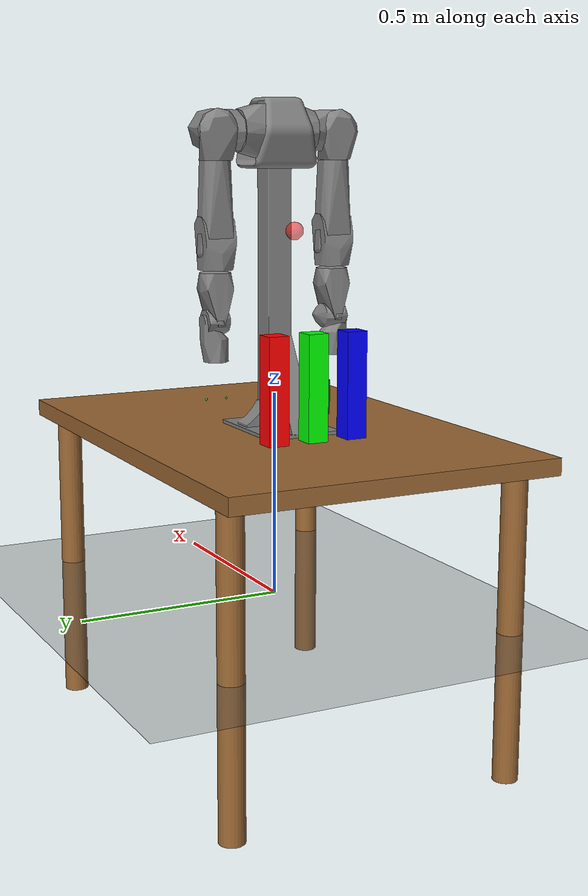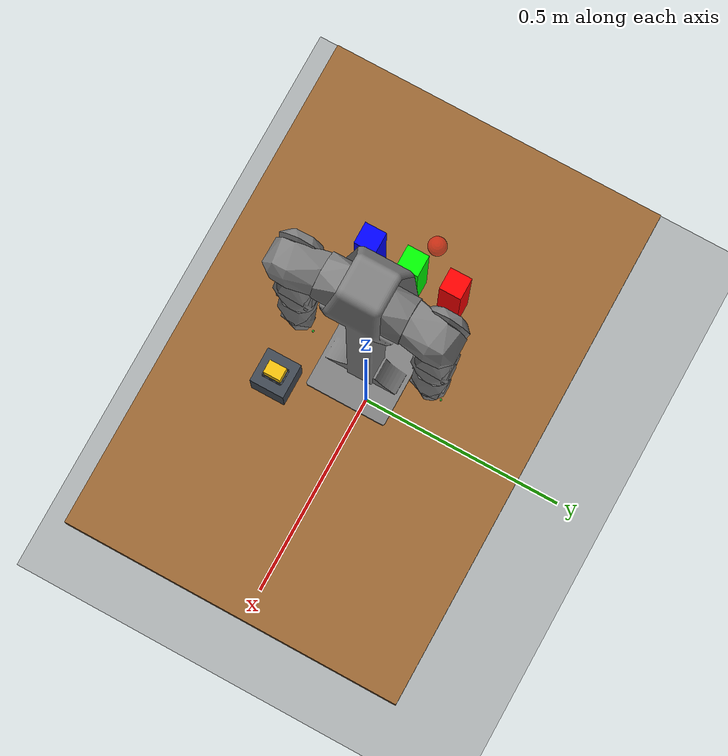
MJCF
<?xml version='1.0' encoding='utf-8'?>
<mujoco model="openarm_pick_demo_v8">
  <compiler angle="radian" />
  <option gravity="0 0 -9.81" />
  <asset>
    <mesh name="body_link0_symp" content_type="model/stl" file="/home/hkz/openarm_rosclaw/ros_ws/src/openarm_description/assets/robot/openarm_v1.0/mesh/body/collision/body_link0_symp.stl" scale="0.001 0.001 0.001" />
    <mesh name="link0_symp" content_type="model/stl" file="/home/hkz/openarm_rosclaw/ros_ws/src/openarm_description/assets/robot/openarm_v1.0/mesh/arm/collision/link0_symp.stl" scale="0.001 -0.001 0.001" />
    <mesh name="link1_symp" content_type="model/stl" file="/home/hkz/openarm_rosclaw/ros_ws/src/openarm_description/assets/robot/openarm_v1.0/mesh/arm/collision/link1_symp.stl" scale="0.001 -0.001 0.001" />
    <mesh name="link2_symp" content_type="model/stl" file="/home/hkz/openarm_rosclaw/ros_ws/src/openarm_description/assets/robot/openarm_v1.0/mesh/arm/collision/link2_symp.stl" scale="0.001 -0.001 0.001" />
    <mesh name="link3_symp" content_type="model/stl" file="/home/hkz/openarm_rosclaw/ros_ws/src/openarm_description/assets/robot/openarm_v1.0/mesh/arm/collision/link3_symp.stl" scale="0.001 0.001 0.001" />
    <mesh name="link4_symp" content_type="model/stl" file="/home/hkz/openarm_rosclaw/ros_ws/src/openarm_description/assets/robot/openarm_v1.0/mesh/arm/collision/link4_symp.stl" scale="0.001 0.001 0.001" />
    <mesh name="link5_symp" content_type="model/stl" file="/home/hkz/openarm_rosclaw/ros_ws/src/openarm_description/assets/robot/openarm_v1.0/mesh/arm/collision/link5_symp.stl" scale="0.001 -0.001 0.001" />
    <mesh name="link6_symp" content_type="model/stl" file="/home/hkz/openarm_rosclaw/ros_ws/src/openarm_description/assets/robot/openarm_v1.0/mesh/arm/collision/link6_symp.stl" scale="0.001 -0.001 0.001" />
    <mesh name="link7_symp" content_type="model/stl" file="/home/hkz/openarm_rosclaw/ros_ws/src/openarm_description/assets/robot/openarm_v1.0/mesh/arm/collision/link7_symp.stl" scale="0.001 -0.001 0.001" />
    <mesh name="link0_symp1" content_type="model/stl" file="/home/hkz/openarm_rosclaw/ros_ws/src/openarm_description/assets/robot/openarm_v1.0/mesh/arm/collision/link0_symp.stl" scale="0.001 0.001 0.001" />
    <mesh name="link1_symp1" content_type="model/stl" file="/home/hkz/openarm_rosclaw/ros_ws/src/openarm_description/assets/robot/openarm_v1.0/mesh/arm/collision/link1_symp.stl" scale="0.001 0.001 0.001" />
    <mesh name="link2_symp1" content_type="model/stl" file="/home/hkz/openarm_rosclaw/ros_ws/src/openarm_description/assets/robot/openarm_v1.0/mesh/arm/collision/link2_symp.stl" scale="0.001 0.001 0.001" />
    <mesh name="link5_symp1" content_type="model/stl" file="/home/hkz/openarm_rosclaw/ros_ws/src/openarm_description/assets/robot/openarm_v1.0/mesh/arm/collision/link5_symp.stl" scale="0.001 0.001 0.001" />
    <mesh name="link6_symp1" content_type="model/stl" file="/home/hkz/openarm_rosclaw/ros_ws/src/openarm_description/assets/robot/openarm_v1.0/mesh/arm/collision/link6_symp.stl" scale="0.001 0.001 0.001" />
    <mesh name="link7_symp1" content_type="model/stl" file="/home/hkz/openarm_rosclaw/ros_ws/src/openarm_description/assets/robot/openarm_v1.0/mesh/arm/collision/link7_symp.stl" scale="0.001 0.001 0.001" />
    <mesh name="finger" content_type="model/stl" file="/home/hkz/openarm_rosclaw/ros_ws/src/openarm_description/assets/end_effector/parallel_link/meshes/collision/finger.stl" scale="0.001 0.001 0.001" />
    <mesh name="finger1" content_type="model/stl" file="/home/hkz/openarm_rosclaw/ros_ws/src/openarm_description/assets/end_effector/parallel_link/meshes/collision/finger.stl" scale="0.001 -0.001 0.001" />
  </asset>
  <worldbody>
    <light name="sun" pos="0 0 3" dir="0 0 -1" directional="true" />
    <geom name="floor" type="plane" size="2 2 0.05" rgba="0.3 0.3 0.3 1" />
    <body name="table" pos="0 0 0.4">
      <geom name="table_top" type="box" size="0.6 0.4 0.02" rgba="0.6 0.4 0.2 1" />
      <geom name="table_leg1" type="cylinder" size="0.03 0.38" pos="0.5 0.35 -0.38" rgba="0.6 0.4 0.2 1" />
      <geom name="table_leg2" type="cylinder" size="0.03 0.38" pos="-0.5 0.35 -0.38" rgba="0.6 0.4 0.2 1" />
      <geom name="table_leg3" type="cylinder" size="0.03 0.38" pos="0.5 -0.35 -0.38" rgba="0.6 0.4 0.2 1" />
      <geom name="table_leg4" type="cylinder" size="0.03 0.38" pos="-0.5 -0.35 -0.38" rgba="0.6 0.4 0.2 1" />
    </body>
    <body name="red_block" pos="-0.2 0.1 0.545">
      <geom name="red_block_geom" type="box" size="0.025 0.025 0.125" rgba="1 0 0 1" friction="1 0.5 0.1" condim="4" />
    </body>
    <body name="blue_block" pos="-0.2 -0.1 0.545">
      <geom name="blue_block_geom" type="box" size="0.025 0.025 0.125" rgba="0 0 1 1" friction="1 0.5 0.1" condim="4" />
    </body>
    <body name="green_block" pos="-0.2 0.0 0.545">
      <geom name="green_block_geom" type="box" size="0.025 0.025 0.125" rgba="0 1 0 1" friction="1 0.5 0.1" condim="4" />
    </body>
    <site name="target_marker" pos="-0.2 0.05 0.9" size="0.02" rgba="1 0 0 0.5" type="sphere" />
    <body name="pick_demo_support" pos="0.116970 -0.153500 0.463415">
      <geom name="pick_demo_support_geom" type="box" size="0.040000 0.040000 0.043415" rgba="0.25 0.28 0.32 1" friction="2.0 0.5 0.1" condim="4" />
      <geom name="pick_demo_cradle_x_negative" type="box" pos="-0.018000 0.000000 0.044415" size="0.001000 0.022000 0.001000" rgba="0.35 0.38 0.42 1" friction="2.0 0.5 0.1" condim="4" />
      <geom name="pick_demo_cradle_x_positive" type="box" pos="0.018000 0.000000 0.044415" size="0.001000 0.022000 0.001000" rgba="0.35 0.38 0.42 1" friction="2.0 0.5 0.1" condim="4" />
      <geom name="pick_demo_cradle_y_negative" type="box" pos="0.000000 -0.023000 0.044415" size="0.017000 0.001000 0.001000" rgba="0.35 0.38 0.42 1" friction="2.0 0.5 0.1" condim="4" />
      <geom name="pick_demo_cradle_y_positive" type="box" pos="0.000000 0.023000 0.044415" size="0.017000 0.001000 0.001000" rgba="0.35 0.38 0.42 1" friction="2.0 0.5 0.1" condim="4" />
    </body>
    <body name="pick_demo_block" pos="0.11697 -0.15350 0.52183">
      <joint name="pick_demo_block_freejoint" type="free" damping="0.2" />
      <geom name="pick_demo_block_geom" type="box" size="0.01500 0.02000 0.01500" mass="0.025" rgba="0.95 0.75 0.05 1" friction="2.0 0.5 0.1" condim="4" />
    </body>
    <body name="openarm_base_wrapper" pos="0 0 0.42">
      <geom name="openarm_body_link0_collision" type="mesh" mesh="body_link0_symp" />
      <geom name="openarm_left_link0_collision" pos="0 0.031 0.698" quat="0.707105 -0.707108 0 0" type="mesh" mesh="link0_symp" />
      <geom name="openarm_right_link0_collision" pos="0 -0.031 0.698" quat="0.707105 0.707108 0 0" type="mesh" mesh="link0_symp1" />
      <body name="openarm_left_link1" pos="0 0.0935 0.698" quat="0.707105 -0.707108 0 0">
        <inertial pos="0.00114677 -3.31999e-05 0.0539528" quat="0.999653 -0.00178277 0.0262159 0.0018256" mass="1.14167" diaginertia="0.00156853 0.001273 0.00101447" />
        <joint name="openarm_left_joint1" pos="0 0 0" axis="0 0 1" range="-3.49066 1.39626" actuatorfrcrange="-40 40" />
        <geom name="openarm_left_link1_collision" pos="0 0 -0.0625" type="mesh" mesh="link1_symp" />
        <body name="openarm_left_link2" pos="-0.0301 0 0.06" quat="0.707107 -0.707107 0 0">
          <inertial pos="0.00839629 2.01451e-08 0.0325665" quat="0.966167 -0.00423301 0.257864 -0.00305037" mass="0.277509" diaginertia="0.000421651 0.000376006 0.000169343" />
          <joint name="openarm_left_joint2" pos="0 0 0" axis="-1 0 0" range="-3.31613 0.174533" actuatorfrcrange="-40 40" />
          <geom name="openarm_left_link2_collision" pos="0.0301 0 -0.1225" type="mesh" mesh="link2_symp" />
          <body name="openarm_left_link3" pos="0.0301 0 0.06625">
            <inertial pos="-0.00210475 0.000554909 0.0904747" quat="0.999951 -0.00493243 -0.00144148 0.00846755" mass="1.07386" diaginertia="0.00437205 0.00431934 0.000660613" />
            <joint name="openarm_left_joint3" pos="0 0 0" axis="0 0 1" range="-1.5708 1.5708" actuatorfrcrange="-27 27" />
            <geom name="openarm_left_link3_collision" pos="0 0 -0.18875" quat="1 0 0 0" type="mesh" mesh="link3_symp" />
            <body name="openarm_left_link4" pos="0 0.0315 0.15375">
              <inertial pos="-0.00290068 -0.0303058 0.0633964" quat="0.994282 0.0996876 0.0329726 -0.0194356" mass="0.634853" diaginertia="0.000624355 0.000518596 0.000325049" />
              <joint name="openarm_left_joint4" pos="0 0 0" axis="0 1 0" range="0 2.44346" actuatorfrcrange="-27 27" />
              <geom name="openarm_left_link4_collision" pos="0 -0.0315 -0.3425" type="mesh" mesh="link4_symp" />
              <body name="openarm_left_link5" pos="0 -0.0315 0.0955">
                <inertial pos="-0.00304967 -0.00088669 0.0430798" quat="0.811398 0.0020034 -0.0362076 0.583368" mass="0.615659" diaginertia="0.000448064 0.000420549 0.000323387" />
                <joint name="openarm_left_joint5" pos="0 0 0" axis="0 0 1" range="-1.5708 1.5708" actuatorfrcrange="-7 7" />
                <geom name="openarm_left_link5_collision" pos="0 0 -0.438" quat="1 0 0 0" type="mesh" mesh="link5_symp" />
                <body name="openarm_left_link6" pos="0.0375 0 0.1205">
                  <inertial pos="-0.0371366 -0.000332305 -9.49837e-05" quat="-0.162305 0.716462 -0.124543 0.666955" mass="0.475203" diaginertia="0.000159518 0.000156606 0.000142875" />
                  <joint name="openarm_left_joint6" pos="0 0 0" axis="1 0 0" range="-0.785398 0.785398" actuatorfrcrange="-7 7" />
                  <geom name="openarm_left_link6_collision" pos="-0.0375 0 -0.5585" quat="1 0 0 0" type="mesh" mesh="link6_symp" />
                  <body name="openarm_left_link7" pos="-0.0375 0 0">
                    <inertial pos="6.87551e-05 -0.0126618 0.0695195" quat="0.977257 -0.211956 -0.00210064 -0.00621976" mass="0.465977" diaginertia="0.000639018 0.000537496 0.000301486" />
                    <joint name="openarm_left_joint7" pos="0 0 0" axis="0 -1 0" range="-1.5708 1.5708" actuatorfrcrange="-7 7" />
                    <geom name="openarm_left_link7_collision" pos="0 0 -0.5585" type="mesh" mesh="link7_symp" />
                    <body name="openarm_left_right_finger" pos="0 -0.0334627307177 0.1025">
                      <inertial pos="0.0064528 -0.01702 0.0219685" quat="0.904408 0.0781531 -0.188678 0.374618" mass="0.0360255" diaginertia="1.83333e-06 1.83333e-06 1.83333e-06" />
                      <joint name="openarm_left_finger_joint1" pos="0 0 0" axis="-0 1 -0" type="slide" range="0 0.044" actuatorfrcrange="-333 333" />
                      <geom name="openarm_left_right_finger_collision" pos="0 0.05 -0.673001" quat="1 0 0 0" type="mesh" mesh="finger1" />
                      <site name="openarm_left_finger1_contact_site" pos="-0.000897880448631 0.00776118841359 0.0802128056381" size="0.0025" type="sphere" rgba="0.1 0.9 0.2 0.8" />
                    </body>
                    <body name="openarm_left_left_finger" pos="0 0.0334627307177 0.1025">
                      <inertial pos="0.0064528 0.01702 0.0219685" quat="0.904408 0.0781531 -0.188678 0.374618" mass="0.0360255" diaginertia="1.83333e-06 1.83333e-06 1.83333e-06" />
                      <joint name="openarm_left_finger_joint2" pos="0 0 0" axis="-0 -1 -0" type="slide" range="0 0.044" actuatorfrcrange="-333 333" />
                      <geom name="openarm_left_left_finger_collision" pos="0 -0.05 -0.673001" quat="1 0 0 0" type="mesh" mesh="finger" />
                      <site name="openarm_left_finger2_contact_site" pos="-0.000897880448631 -0.00776118841359 0.0802128056381" size="0.0025" type="sphere" rgba="0.1 0.9 0.2 0.8" />
                    </body>
                  </body>
                </body>
              </body>
            </body>
          </body>
        </body>
      </body>
      <body name="openarm_right_link1" pos="0 -0.0935 0.698" quat="0.707105 0.707108 0 0">
        <inertial pos="0.00114677 3.31999e-05 0.0539528" quat="0.999653 0.00178277 0.0262159 -0.0018256" mass="1.14167" diaginertia="0.00156853 0.001273 0.00101447" />
        <joint name="openarm_right_joint1" pos="0 0 0" axis="0 0 1" range="-1.39626 3.49066" actuatorfrcrange="-40 40" />
        <geom name="openarm_right_link1_collision" pos="0 0 -0.0625" type="mesh" mesh="link1_symp1" />
        <body name="openarm_right_link2" pos="-0.0301 0 0.06" quat="0.707107 0.707107 0 0">
          <inertial pos="0.00839629 -2.01451e-08 0.0325665" quat="0.966167 0.00423301 0.257864 0.00305037" mass="0.277509" diaginertia="0.000421651 0.000376006 0.000169343" />
          <joint name="openarm_right_joint2" pos="0 0 0" axis="-1 0 0" range="-0.174533 3.31613" actuatorfrcrange="-40 40" />
          <geom name="openarm_right_link2_collision" pos="0.0301 0 -0.1225" quat="1 0 0 0" type="mesh" mesh="link2_symp1" />
          <body name="openarm_right_link3" pos="0.0301 0 0.06625">
            <inertial pos="-0.00210475 0.000554909 0.0904747" quat="0.999951 -0.00493243 -0.00144148 0.00846755" mass="1.07386" diaginertia="0.00437205 0.00431934 0.000660613" />
            <joint name="openarm_right_joint3" pos="0 0 0" axis="0 0 1" range="-1.5708 1.5708" actuatorfrcrange="-27 27" />
            <geom name="openarm_right_link3_collision" pos="0 0 -0.18875" quat="1 0 0 0" type="mesh" mesh="link3_symp" />
            <body name="openarm_right_link4" pos="0 0.0315 0.15375">
              <inertial pos="-0.00290068 -0.0303058 0.0633964" quat="0.994282 0.0996876 0.0329726 -0.0194356" mass="0.634853" diaginertia="0.000624355 0.000518596 0.000325049" />
              <joint name="openarm_right_joint4" pos="0 0 0" axis="0 1 0" range="0 2.44346" actuatorfrcrange="-27 27" />
              <geom name="openarm_right_link4_collision" pos="0 -0.0315 -0.3425" type="mesh" mesh="link4_symp" />
              <body name="openarm_right_link5" pos="0 -0.0315 0.0955">
                <inertial pos="-0.00304967 0.00088669 0.0430798" quat="0.583368 -0.0362076 0.0020034 0.811398" mass="0.615659" diaginertia="0.000448064 0.000420549 0.000323387" />
                <joint name="openarm_right_joint5" pos="0 0 0" axis="0 0 1" range="-1.5708 1.5708" actuatorfrcrange="-7 7" />
                <geom name="openarm_right_link5_collision" pos="0 0 -0.438" quat="1 0 0 0" type="mesh" mesh="link5_symp1" />
                <body name="openarm_right_link6" pos="0.0375 0 0.1205">
                  <inertial pos="-0.0371366 0.000332305 -9.49837e-05" quat="0.162305 0.716462 0.124543 0.666955" mass="0.475203" diaginertia="0.000159518 0.000156606 0.000142875" />
                  <joint name="openarm_right_joint6" pos="0 0 0" axis="1 0 0" range="-0.785398 0.785398" actuatorfrcrange="-7 7" />
                  <geom name="openarm_right_link6_collision" pos="-0.0375 0 -0.5585" quat="1 0 0 0" type="mesh" mesh="link6_symp1" />
                  <body name="openarm_right_link7" pos="-0.0375 0 0">
                    <inertial pos="6.87551e-05 0.0126618 0.0695195" quat="0.977257 0.211956 -0.00210064 0.00621976" mass="0.465977" diaginertia="0.000639018 0.000537496 0.000301486" />
                    <joint name="openarm_right_joint7" pos="0 0 0" axis="0 1 0" range="-1.5708 1.5708" actuatorfrcrange="-7 7" />
                    <geom name="openarm_right_link7_collision" pos="0 0 -0.5585" type="mesh" mesh="link7_symp1" />
                    <body name="openarm_right_right_finger" pos="0 -0.0334627307177 0.1025">
                      <inertial pos="0.0064528 -0.01702 0.0219685" quat="0.904408 0.0781531 -0.188678 0.374618" mass="0.0360255" diaginertia="1.83333e-06 1.83333e-06 1.83333e-06" />
                      <joint name="openarm_right_finger_joint1" pos="0 0 0" axis="-0 1 -0" type="slide" range="0 0.044" actuatorfrcrange="-333 333" />
                      <geom name="openarm_right_right_finger_collision" pos="0 0.05 -0.673001" quat="1 0 0 0" type="mesh" mesh="finger1" />
                      <site name="openarm_right_finger1_contact_site" pos="-0.000897880448631 0.00776118841359 0.0802128056381" size="0.0025" type="sphere" rgba="0.1 0.9 0.2 0.8" />
                    </body>
                    <body name="openarm_right_left_finger" pos="0 0.0334627307177 0.1025">
                      <inertial pos="0.0064528 0.01702 0.0219685" quat="0.904408 0.0781531 -0.188678 0.374618" mass="0.0360255" diaginertia="1.83333e-06 1.83333e-06 1.83333e-06" />
                      <joint name="openarm_right_finger_joint2" pos="0 0 0" axis="-0 -1 -0" type="slide" range="0 0.044" actuatorfrcrange="-333 333" />
                      <geom name="openarm_right_left_finger_collision" pos="0 -0.05 -0.673001" quat="1 0 0 0" type="mesh" mesh="finger" />
                      <site name="openarm_right_finger2_contact_site" pos="-0.000897880448631 -0.00776118841359 0.0802128056381" size="0.0025" type="sphere" rgba="0.1 0.9 0.2 0.8" />
                    </body>
                  </body>
                </body>
              </body>
            </body>
          </body>
        </body>
      </body>
    </body>
  </worldbody>
  <equality>
    <joint name="openarm_left_finger_mimic" joint1="openarm_left_finger_joint2" joint2="openarm_left_finger_joint1" polycoef="0 1 0 0 0" solref="0.004 1" />
    <joint name="openarm_right_finger_mimic" joint1="openarm_right_finger_joint2" joint2="openarm_right_finger_joint1" polycoef="0 1 0 0 0" solref="0.004 1" />
  </equality>
  <actuator>
    <position name="openarm_left_gripper_position" joint="openarm_left_finger_joint1" kp="200" ctrllimited="true" ctrlrange="0 0.044" forcelimited="true" forcerange="-9 9" />
    <position name="openarm_right_gripper_position" joint="openarm_right_finger_joint1" kp="200" ctrllimited="true" ctrlrange="0 0.044" forcelimited="true" forcerange="-9 9" />
  </actuator>
</mujoco>
